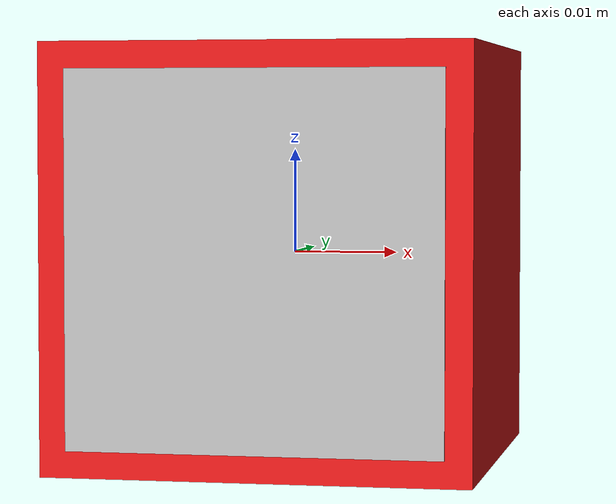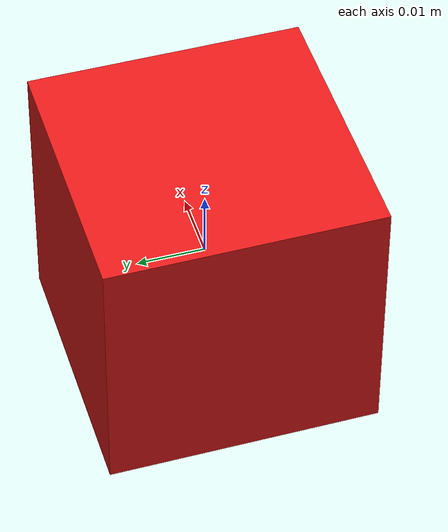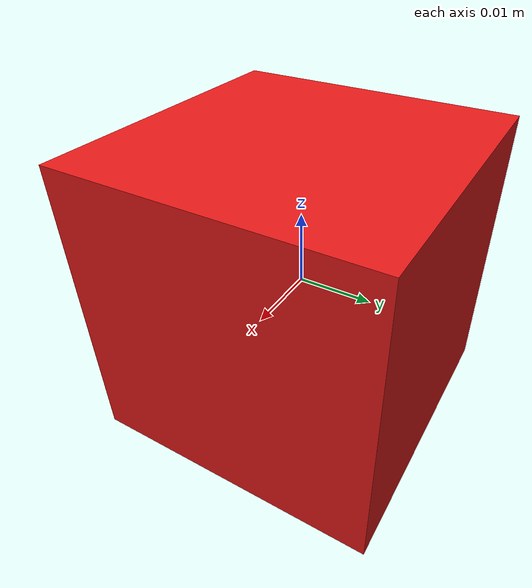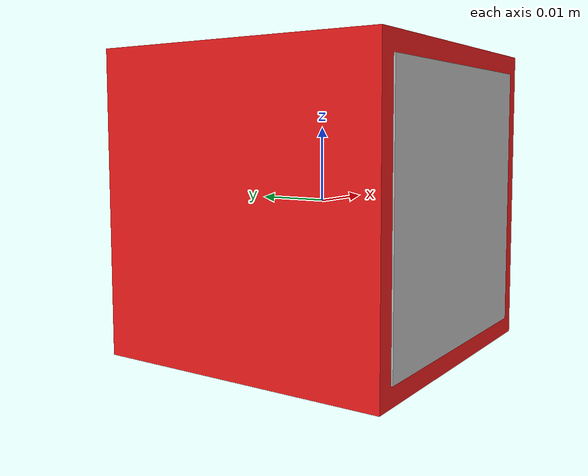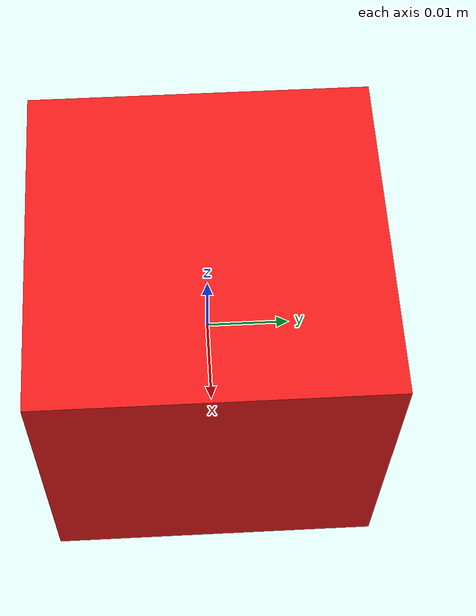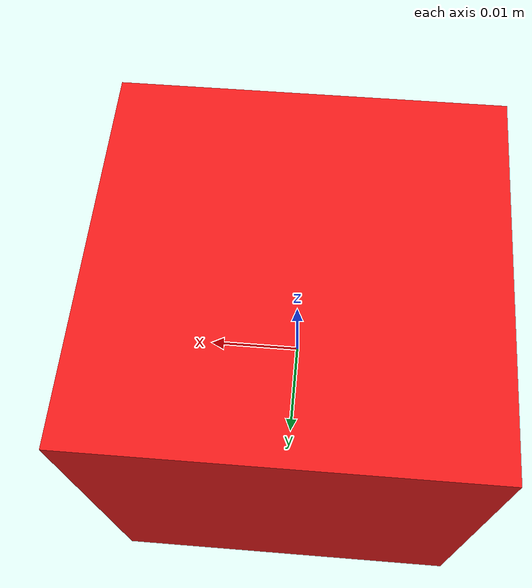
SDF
<?xml version="1.0"?>
<sdf version="1.6">
  <model name="cube_small">
    <link name="cube_link">
      <inertial>
        <mass>0.05</mass>
        <inertia>
          <ixx>0.000013</ixx><ixy>0</ixy><ixz>0</ixz>
          <iyy>0.000013</iyy><iyz>0</iyz><izz>0.000013</izz>
        </inertia>
      </inertial>

      <collision name="collision">
        <geometry><box><size>0.04 0.04 0.04</size></box></geometry>
        <surface>
          <friction><ode><mu>100.0</mu><mu2>100.0</mu2></ode></friction>
          <contact>
            <ode>
              <kp>1000000.0</kp>
              <kd>1.0</kd>
              <max_vel>0.0</max_vel>
              <min_depth>0.001</min_depth>
            </ode>
          </contact>
        </surface>
      </collision>

      <visual name="cube_visual">
        <geometry><box><size>0.04 0.04 0.04</size></box></geometry>
        <material>
          <ambient>0.8 0.1 0.1 1</ambient>
          <diffuse>0.9 0.1 0.1 1</diffuse>
        </material>
      </visual>

      <visual name="aruco_marker">
        <pose>0 -0.0201 0 -1.5708 0 0</pose>
        <geometry><box><size>0.035 0.035 0.0002</size></box></geometry>
        <material>
          <script>
            <uri>model://cube_small/materials/scripts</uri>
            <uri>model://cube_small/materials/textures</uri>
            <name>CubeSmall/Aruco</name>
          </script>
        </material>
      </visual>
    </link>
  </model>
</sdf>
